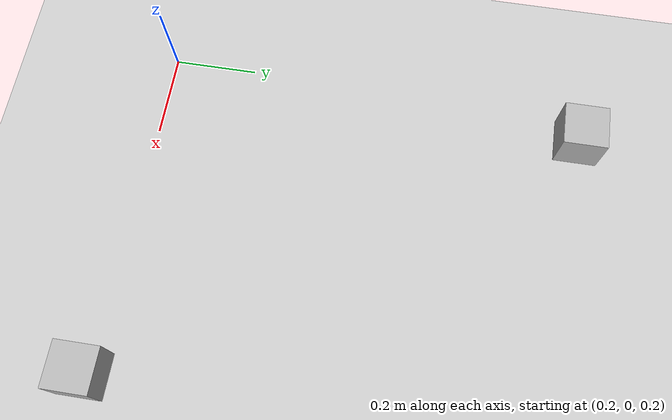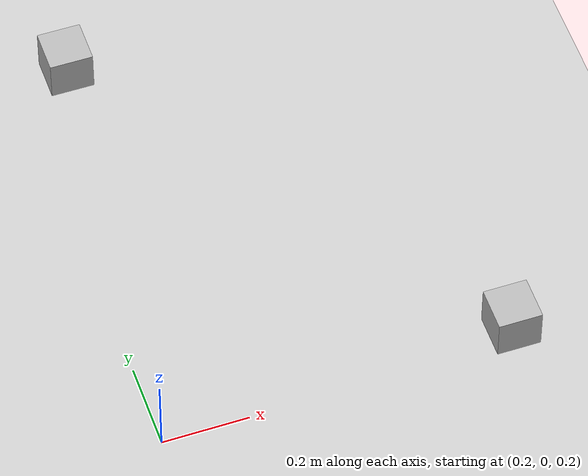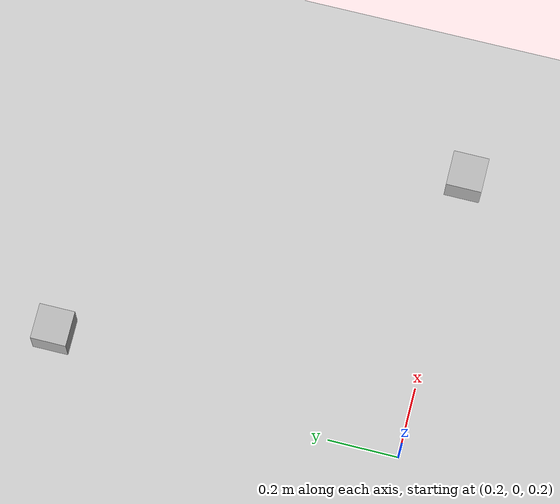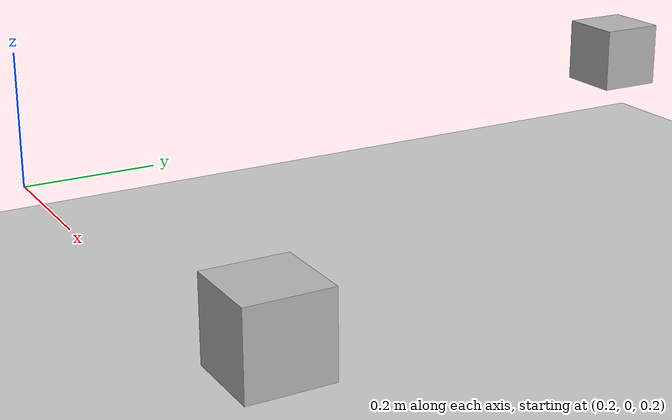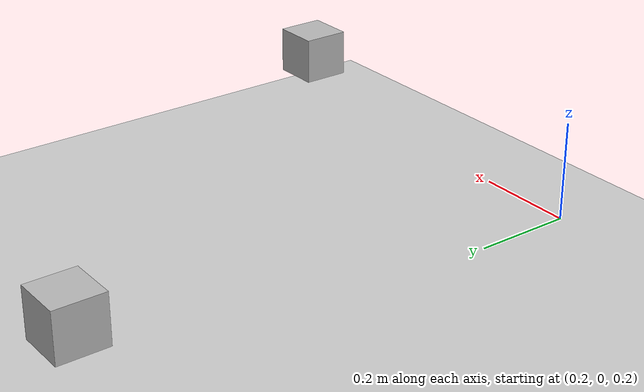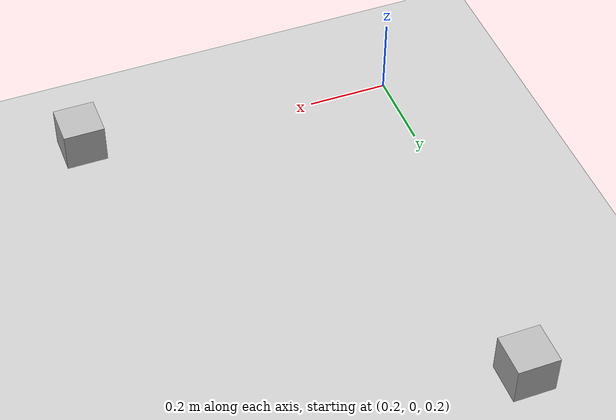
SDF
<?xml version="1.0" ?>
<sdf version="1.4">
    <world name="default">
        <include>
            <uri>model://ground_plane</uri>
        </include>
        <include>
            <uri>model://sun</uri>
        </include>

        <include>
            <uri>model://camera</uri>
            <name>camera</name>
        </include>

        <plugin name="yumi_gazebo" filename="libyumi_gazebo.so"/>

    </world>
</sdf>

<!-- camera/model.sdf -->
<sdf version="1.5">
  <model name='cameras'>
    <static>true</static>
    <link name='camera1'>
      <pose>1 0 0.3 0 0 3.1415926</pose>
      <visual name='visual'>
        <geometry>
          <box>
            <size>0.1 0.1 0.1</size>
          </box>
        </geometry>
      </visual>
      <sensor name='camera1' type='camera'>
        <camera>
          <save enabled="false">
            <path>/tmp/camera_save</path>
          </save>
          <horizontal_fov>1.047</horizontal_fov>
          <image>
            <width>1920</width>
            <height>1080</height>
          </image>
          <clip>
            <near>0.1</near>
            <far>100</far>
          </clip>
        </camera>
        <always_on>1</always_on>
        <update_rate>30</update_rate>
         <plugin name="camera_controller" filename="libgazebo_ros_camera.so">
          <alwaysOn>true</alwaysOn>
          <updateRate>0.0</updateRate>
          <cameraName>/yumi_camera/camera1</cameraName>
          <imageTopicName>image_raw</imageTopicName>
          <cameraInfoTopicName>camera_info</cameraInfoTopicName>
          <frameName>camera</frameName>
          <hackBaseline>0.07</hackBaseline>
          <distortionK1>0.0</distortionK1>
          <distortionK2>0.0</distortionK2>
          <distortionK3>0.0</distortionK3>
          <distortionT1>0.0</distortionT1>
          <distortionT2>0.0</distortionT2>
        </plugin>
      </sensor>
    </link>

    <link name='camera_2'>
      <pose>0.3 1 0.3 0 0 4.7123889</pose>
      <visual name='visual'>
        <geometry>
          <box>
            <size>0.1 0.1 0.1</size>
          </box>
        </geometry>
      </visual>
      <sensor name='camera2' type='camera'>
        <camera>
          <save enabled="false">
            <path>/tmp/camera_save</path>
          </save>
          <horizontal_fov>1.047</horizontal_fov>
          <image>
            <width>1920</width>
            <height>1080</height>
          </image>
          <clip>
            <near>0.1</near>
            <far>100</far>
          </clip>
        </camera>
        <always_on>1</always_on>
        <update_rate>30</update_rate>
         <plugin name="camera_controller" filename="libgazebo_ros_camera.so">
          <alwaysOn>true</alwaysOn>
          <updateRate>0.0</updateRate>
          <cameraName>/yumi_camera/camera2</cameraName>
          <imageTopicName>image_raw</imageTopicName>
          <cameraInfoTopicName>camera_info</cameraInfoTopicName>
          <frameName>camera</frameName>
          <hackBaseline>0.07</hackBaseline>
          <distortionK1>0.0</distortionK1>
          <distortionK2>0.0</distortionK2>
          <distortionK3>0.0</distortionK3>
          <distortionT1>0.0</distortionT1>
          <distortionT2>0.0</distortionT2>
        </plugin>
      </sensor>
    </link>
  </model>
</sdf>
